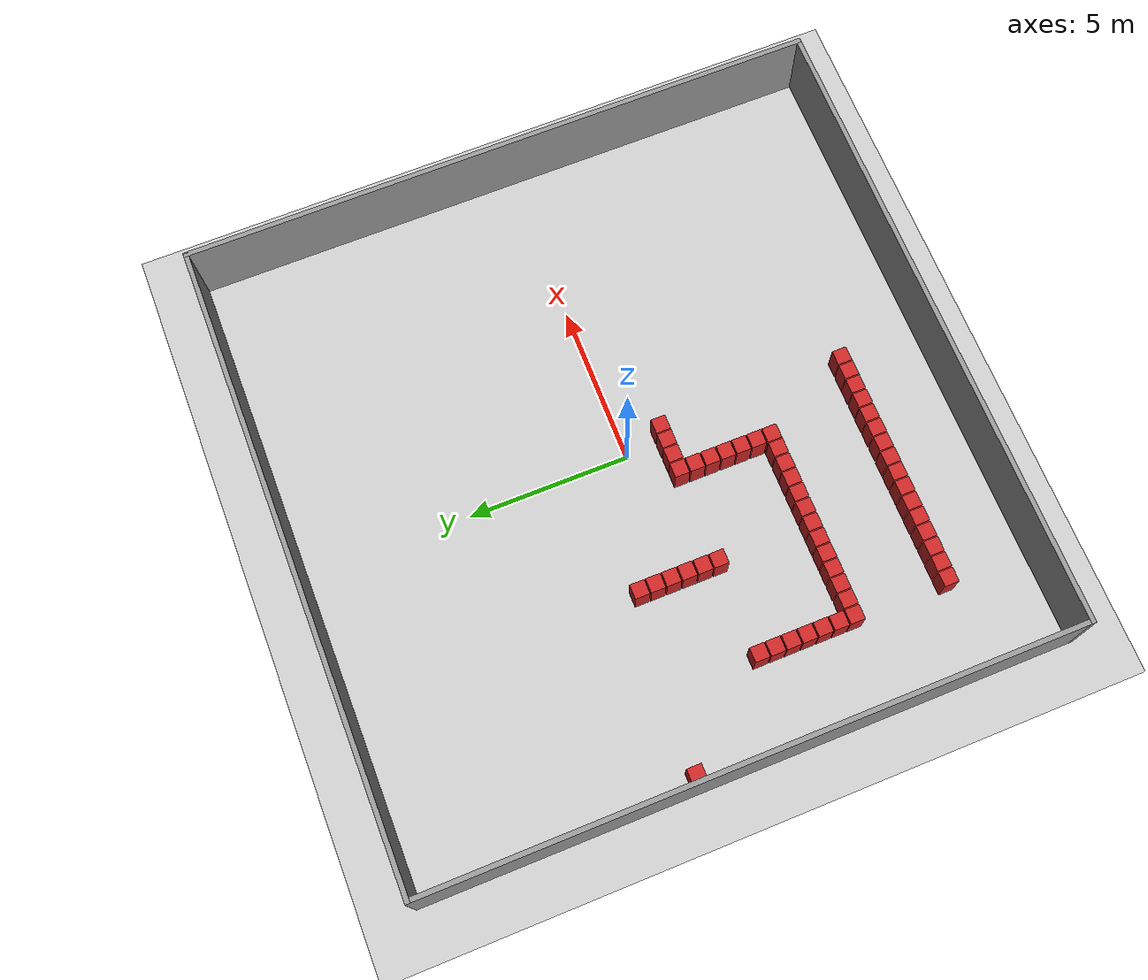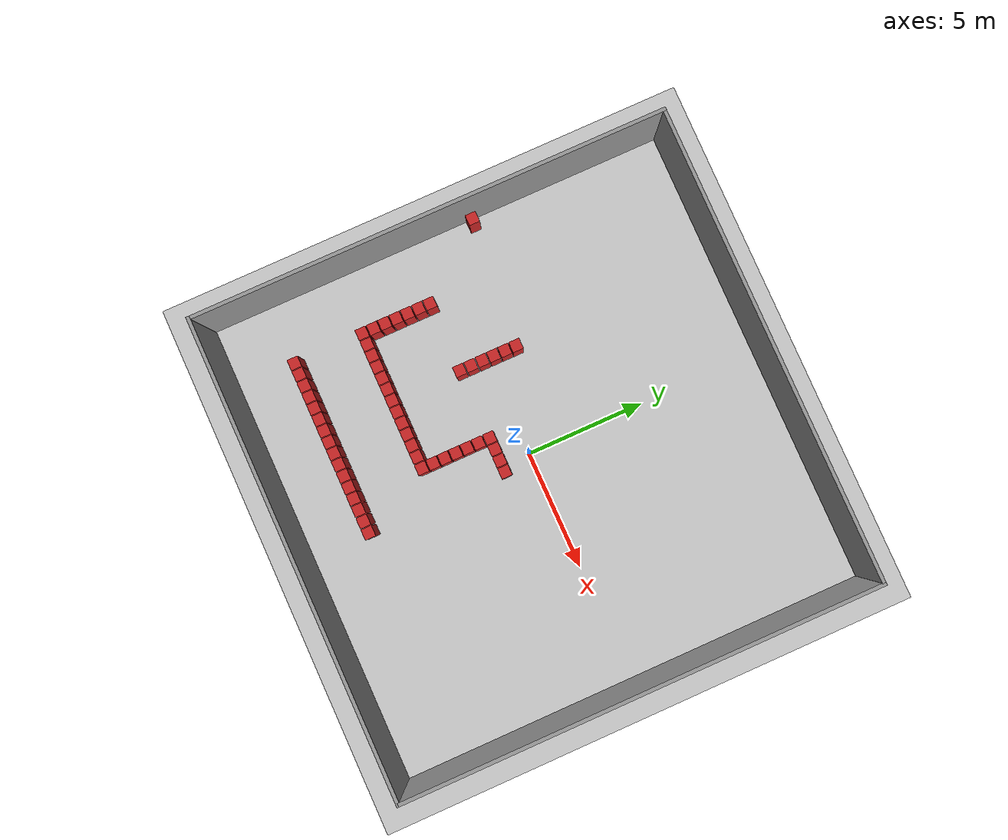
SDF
<sdf version="1.6">
 <world name="default">
  <model name="ground_plane">
   <static>1</static>
   <link name="link">
    <collision name="collision">
     <geometry><plane><normal>0 0 1</normal><size>100 100</size></plane></geometry>
     <surface><friction><ode><mu>100</mu><mu2>50</mu2></ode></friction></surface>
    </collision>
    <visual name="visual">
     <cast_shadows>0</cast_shadows>
     <geometry><plane><normal>0 0 1</normal><size>100 100</size></plane></geometry>
     <material>
      <script><uri>file://media/materials/scripts/gazebo.material</uri><name>Gazebo/Grey</name></script>
     </material>
    </visual>
   </link>
  </model>
  <model name="NamedLocations"><static>1</static><link name="DefaultStart"/></model>
  <model name="20x20_walls">
   <pose>0.044518 0.1761 0 0 -0 0</pose>
   <link name="Wall_1">
    <collision name="Wall_1_Collision">
     <geometry><box><size>20 0.15 2.5</size></box></geometry>
     <pose>0 0 1.25 0 -0 0</pose>
    </collision>
    <visual name="Wall_1_Visual">
     <pose>0 0 1.25 0 -0 0</pose>
     <geometry><box><size>20 0.15 2.5</size></box></geometry>
     <material>
      <script><uri>file://media/materials/scripts/gazebo.material</uri><name>Gazebo/Grey</name></script>
      <ambient>0.976471 0.992157 1 1</ambient>
     </material>
     <meta><layer>0</layer></meta>
    </visual>
    <pose>0 9.925 0 0 -0 0</pose>
   </link>
   <link name="Wall_3">
    <collision name="Wall_3_Collision">
     <geometry><box><size>20 0.15 2.5</size></box></geometry>
     <pose>0 0 1.25 0 -0 0</pose>
    </collision>
    <visual name="Wall_3_Visual">
     <pose>0 0 1.25 0 -0 0</pose>
     <geometry><box><size>20 0.15 2.5</size></box></geometry>
     <material>
      <script><uri>file://media/materials/scripts/gazebo.material</uri><name>Gazebo/Grey</name></script>
      <ambient>0.976471 0.992157 1 1</ambient>
     </material>
     <meta><layer>0</layer></meta>
    </visual>
    <pose>9.925 0 0 0 0 -1.5708</pose>
   </link>
   <link name="Wall_4">
    <collision name="Wall_4_Collision">
     <geometry><box><size>20 0.15 2.5</size></box></geometry>
     <pose>0 0 1.25 0 -0 0</pose>
    </collision>
    <visual name="Wall_4_Visual">
     <pose>0 0 1.25 0 -0 0</pose>
     <geometry><box><size>20 0.15 2.5</size></box></geometry>
     <material>
      <script><uri>file://media/materials/scripts/gazebo.material</uri><name>Gazebo/Grey</name></script>
      <ambient>0.976471 0.992157 1 1</ambient>
     </material>
     <meta><layer>0</layer></meta>
    </visual>
    <pose>0 -9.925 0 0 -0 3.14159</pose>
   </link>
   <link name="Wall_5">
    <collision name="Wall_5_Collision">
     <geometry><box><size>20 0.15 2.5</size></box></geometry>
     <pose>0 0 1.25 0 -0 0</pose>
    </collision>
    <visual name="Wall_5_Visual">
     <pose>0 0 1.25 0 -0 0</pose>
     <geometry><box><size>20 0.15 2.5</size></box></geometry>
     <material>
      <script><uri>file://media/materials/scripts/gazebo.material</uri><name>Gazebo/Grey</name></script>
      <ambient>0.976471 0.992157 1 1</ambient>
     </material>
     <meta><layer>0</layer></meta>
    </visual>
    <pose>-9.925 0 0 0 -0 1.5708</pose>
   </link>
   <static>1</static>
  </model>
  <model name="box_obstacle0">
   <static>0</static>
   <link name="link">
    <pose>0 0 0.1 0 -0 0</pose>
    <inertial>
     <mass>100</mass>
     <inertia>
      <ixx>0.166667</ixx>
      <ixy>0</ixy>
      <ixz>0</ixz>
      <iyy>0.166667</iyy>
      <iyz>0</iyz>
      <izz>0.166667</izz>
     </inertia>
    </inertial>
    <collision name="collision"><geometry><box><size>0.45 0.45 1</size></box></geometry></collision>
    <visual name="visual">
     <geometry><box><size>0.45 0.45 1</size></box></geometry>
     <material>
      <script><name>Gazebo/Red</name><uri>file://media/materials/scripts/gazebo.material</uri></script>
     </material>
    </visual>
   </link>
   <pose>-9.51051 1.75876 0.4 0 5e-06 0.002247</pose>
  </model>
  <model name="box_obstacle10">
   <static>0</static>
   <link name="link">
    <pose>0 0 0.1 0 -0 0</pose>
    <inertial>
     <mass>100</mass>
     <inertia>
      <ixx>0.166667</ixx>
      <ixy>0</ixy>
      <ixz>0</ixz>
      <iyy>0.166667</iyy>
      <iyz>0</iyz>
      <izz>0.166667</izz>
     </inertia>
    </inertial>
    <collision name="collision"><geometry><box><size>0.45 0.45 1</size></box></geometry></collision>
    <visual name="visual">
     <geometry><box><size>0.45 0.45 1</size></box></geometry>
     <material>
      <script><name>Gazebo/Red</name><uri>file://media/materials/scripts/gazebo.material</uri></script>
     </material>
    </visual>
   </link>
   <pose>-7.06051 -7.06124 0.4 0 5e-06 0.002247</pose>
  </model>
  <model name="box_obstacle11">
   <static>0</static>
   <link name="link">
    <pose>0 0 0.1 0 -0 0</pose>
    <inertial>
     <mass>100</mass>
     <inertia>
      <ixx>0.166667</ixx>
      <ixy>0</ixy>
      <ixz>0</ixz>
      <iyy>0.166667</iyy>
      <iyz>0</iyz>
      <izz>0.166667</izz>
     </inertia>
    </inertial>
    <collision name="collision"><geometry><box><size>0.45 0.45 1</size></box></geometry></collision>
    <visual name="visual">
     <geometry><box><size>0.45 0.45 1</size></box></geometry>
     <material>
      <script><name>Gazebo/Red</name><uri>file://media/materials/scripts/gazebo.material</uri></script>
     </material>
    </visual>
   </link>
   <pose>-7.06051 -4.12124 0.4 0 5e-06 0.002247</pose>
  </model>
  <model name="box_obstacle12">
   <static>0</static>
   <link name="link">
    <pose>0 0 0.1 0 -0 0</pose>
    <inertial>
     <mass>100</mass>
     <inertia>
      <ixx>0.166667</ixx>
      <ixy>0</ixy>
      <ixz>0</ixz>
      <iyy>0.166667</iyy>
      <iyz>0</iyz>
      <izz>0.166667</izz>
     </inertia>
    </inertial>
    <collision name="collision"><geometry><box><size>0.45 0.45 1</size></box></geometry></collision>
    <visual name="visual">
     <geometry><box><size>0.45 0.45 1</size></box></geometry>
     <material>
      <script><name>Gazebo/Red</name><uri>file://media/materials/scripts/gazebo.material</uri></script>
     </material>
    </visual>
   </link>
   <pose>-7.06051 -3.63124 0.4 0 5e-06 0.002247</pose>
  </model>
  <model name="box_obstacle13">
   <static>0</static>
   <link name="link">
    <pose>0 0 0.1 0 -0 0</pose>
    <inertial>
     <mass>100</mass>
     <inertia>
      <ixx>0.166667</ixx>
      <ixy>0</ixy>
      <ixz>0</ixz>
      <iyy>0.166667</iyy>
      <iyz>0</iyz>
      <izz>0.166667</izz>
     </inertia>
    </inertial>
    <collision name="collision"><geometry><box><size>0.45 0.45 1</size></box></geometry></collision>
    <visual name="visual">
     <geometry><box><size>0.45 0.45 1</size></box></geometry>
     <material>
      <script><name>Gazebo/Red</name><uri>file://media/materials/scripts/gazebo.material</uri></script>
     </material>
    </visual>
   </link>
   <pose>-7.06051 -3.14124 0.4 0 5e-06 0.002247</pose>
  </model>
  <model name="box_obstacle14">
   <static>0</static>
   <link name="link">
    <pose>0 0 0.1 0 -0 0</pose>
    <inertial>
     <mass>100</mass>
     <inertia>
      <ixx>0.166667</ixx>
      <ixy>0</ixy>
      <ixz>0</ixz>
      <iyy>0.166667</iyy>
      <iyz>0</iyz>
      <izz>0.166667</izz>
     </inertia>
    </inertial>
    <collision name="collision"><geometry><box><size>0.45 0.45 1</size></box></geometry></collision>
    <visual name="visual">
     <geometry><box><size>0.45 0.45 1</size></box></geometry>
     <material>
      <script><name>Gazebo/Red</name><uri>file://media/materials/scripts/gazebo.material</uri></script>
     </material>
    </visual>
   </link>
   <pose>-7.06051 -2.65124 0.4 0 5e-06 0.002247</pose>
  </model>
  <model name="box_obstacle15">
   <static>0</static>
   <link name="link">
    <pose>0 0 0.1 0 -0 0</pose>
    <inertial>
     <mass>100</mass>
     <inertia>
      <ixx>0.166667</ixx>
      <ixy>0</ixy>
      <ixz>0</ixz>
      <iyy>0.166667</iyy>
      <iyz>0</iyz>
      <izz>0.166667</izz>
     </inertia>
    </inertial>
    <collision name="collision"><geometry><box><size>0.45 0.45 1</size></box></geometry></collision>
    <visual name="visual">
     <geometry><box><size>0.45 0.45 1</size></box></geometry>
     <material>
      <script><name>Gazebo/Red</name><uri>file://media/materials/scripts/gazebo.material</uri></script>
     </material>
    </visual>
   </link>
   <pose>-7.06051 -2.16124 0.4 0 5e-06 0.002247</pose>
  </model>
  <model name="box_obstacle16">
   <static>0</static>
   <link name="link">
    <pose>0 0 0.1 0 -0 0</pose>
    <inertial>
     <mass>100</mass>
     <inertia>
      <ixx>0.166667</ixx>
      <ixy>0</ixy>
      <ixz>0</ixz>
      <iyy>0.166667</iyy>
      <iyz>0</iyz>
      <izz>0.166667</izz>
     </inertia>
    </inertial>
    <collision name="collision"><geometry><box><size>0.45 0.45 1</size></box></geometry></collision>
    <visual name="visual">
     <geometry><box><size>0.45 0.45 1</size></box></geometry>
     <material>
      <script><name>Gazebo/Red</name><uri>file://media/materials/scripts/gazebo.material</uri></script>
     </material>
    </visual>
   </link>
   <pose>-7.06051 -1.67124 0.4 0 5e-06 0.002247</pose>
  </model>
  <model name="box_obstacle17">
   <static>0</static>
   <link name="link">
    <pose>0 0 0.1 0 -0 0</pose>
    <inertial>
     <mass>100</mass>
     <inertia>
      <ixx>0.166667</ixx>
      <ixy>0</ixy>
      <ixz>0</ixz>
      <iyy>0.166667</iyy>
      <iyz>0</iyz>
      <izz>0.166667</izz>
     </inertia>
    </inertial>
    <collision name="collision"><geometry><box><size>0.45 0.45 1</size></box></geometry></collision>
    <visual name="visual">
     <geometry><box><size>0.45 0.45 1</size></box></geometry>
     <material>
      <script><name>Gazebo/Red</name><uri>file://media/materials/scripts/gazebo.material</uri></script>
     </material>
    </visual>
   </link>
   <pose>-7.06051 -1.18124 0.4 0 5e-06 0.002247</pose>
  </model>
  <model name="box_obstacle21">
   <static>0</static>
   <link name="link">
    <pose>0 0 0.1 0 -0 0</pose>
    <inertial>
     <mass>100</mass>
     <inertia>
      <ixx>0.166667</ixx>
      <ixy>0</ixy>
      <ixz>0</ixz>
      <iyy>0.166667</iyy>
      <iyz>0</iyz>
      <izz>0.166667</izz>
     </inertia>
    </inertial>
    <collision name="collision"><geometry><box><size>0.45 0.45 1</size></box></geometry></collision>
    <visual name="visual">
     <geometry><box><size>0.45 0.45 1</size></box></geometry>
     <material>
      <script><name>Gazebo/Red</name><uri>file://media/materials/scripts/gazebo.material</uri></script>
     </material>
    </visual>
   </link>
   <pose>-6.57051 -7.06124 0.4 0 5e-06 0.002247</pose>
  </model>
  <model name="box_obstacle22">
   <static>0</static>
   <link name="link">
    <pose>0 0 0.1 0 -0 0</pose>
    <inertial>
     <mass>100</mass>
     <inertia>
      <ixx>0.166667</ixx>
      <ixy>0</ixy>
      <ixz>0</ixz>
      <iyy>0.166667</iyy>
      <iyz>0</iyz>
      <izz>0.166667</izz>
     </inertia>
    </inertial>
    <collision name="collision"><geometry><box><size>0.45 0.45 1</size></box></geometry></collision>
    <visual name="visual">
     <geometry><box><size>0.45 0.45 1</size></box></geometry>
     <material>
      <script><name>Gazebo/Red</name><uri>file://media/materials/scripts/gazebo.material</uri></script>
     </material>
    </visual>
   </link>
   <pose>-6.57051 -4.12124 0.4 0 5e-06 0.002247</pose>
  </model>
  <model name="box_obstacle25">
   <static>0</static>
   <link name="link">
    <pose>0 0 0.1 0 -0 0</pose>
    <inertial>
     <mass>100</mass>
     <inertia>
      <ixx>0.166667</ixx>
      <ixy>0</ixy>
      <ixz>0</ixz>
      <iyy>0.166667</iyy>
      <iyz>0</iyz>
      <izz>0.166667</izz>
     </inertia>
    </inertial>
    <collision name="collision"><geometry><box><size>0.45 0.45 1</size></box></geometry></collision>
    <visual name="visual">
     <geometry><box><size>0.45 0.45 1</size></box></geometry>
     <material>
      <script><name>Gazebo/Red</name><uri>file://media/materials/scripts/gazebo.material</uri></script>
     </material>
    </visual>
   </link>
   <pose>-6.08051 -7.06124 0.4 0 5e-06 0.002247</pose>
  </model>
  <model name="box_obstacle26">
   <static>0</static>
   <link name="link">
    <pose>0 0 0.1 0 -0 0</pose>
    <inertial>
     <mass>100</mass>
     <inertia>
      <ixx>0.166667</ixx>
      <ixy>0</ixy>
      <ixz>0</ixz>
      <iyy>0.166667</iyy>
      <iyz>0</iyz>
      <izz>0.166667</izz>
     </inertia>
    </inertial>
    <collision name="collision"><geometry><box><size>0.45 0.45 1</size></box></geometry></collision>
    <visual name="visual">
     <geometry><box><size>0.45 0.45 1</size></box></geometry>
     <material>
      <script><name>Gazebo/Red</name><uri>file://media/materials/scripts/gazebo.material</uri></script>
     </material>
    </visual>
   </link>
   <pose>-6.08051 -4.12124 0.4 0 5e-06 0.002247</pose>
  </model>
  <model name="box_obstacle29">
   <static>0</static>
   <link name="link">
    <pose>0 0 0.1 0 -0 0</pose>
    <inertial>
     <mass>100</mass>
     <inertia>
      <ixx>0.166667</ixx>
      <ixy>0</ixy>
      <ixz>0</ixz>
      <iyy>0.166667</iyy>
      <iyz>0</iyz>
      <izz>0.166667</izz>
     </inertia>
    </inertial>
    <collision name="collision"><geometry><box><size>0.45 0.45 1</size></box></geometry></collision>
    <visual name="visual">
     <geometry><box><size>0.45 0.45 1</size></box></geometry>
     <material>
      <script><name>Gazebo/Red</name><uri>file://media/materials/scripts/gazebo.material</uri></script>
     </material>
    </visual>
   </link>
   <pose>-5.59051 -7.06124 0.4 0 5e-06 0.002247</pose>
  </model>
  <model name="box_obstacle30">
   <static>0</static>
   <link name="link">
    <pose>0 0 0.1 0 -0 0</pose>
    <inertial>
     <mass>100</mass>
     <inertia>
      <ixx>0.166667</ixx>
      <ixy>0</ixy>
      <ixz>0</ixz>
      <iyy>0.166667</iyy>
      <iyz>0</iyz>
      <izz>0.166667</izz>
     </inertia>
    </inertial>
    <collision name="collision"><geometry><box><size>0.45 0.45 1</size></box></geometry></collision>
    <visual name="visual">
     <geometry><box><size>0.45 0.45 1</size></box></geometry>
     <material>
      <script><name>Gazebo/Red</name><uri>file://media/materials/scripts/gazebo.material</uri></script>
     </material>
    </visual>
   </link>
   <pose>-5.59051 -4.12124 0.4 0 5e-06 0.002247</pose>
  </model>
  <model name="box_obstacle33">
   <static>0</static>
   <link name="link">
    <pose>0 0 0.1 0 -0 0</pose>
    <inertial>
     <mass>100</mass>
     <inertia>
      <ixx>0.166667</ixx>
      <ixy>0</ixy>
      <ixz>0</ixz>
      <iyy>0.166667</iyy>
      <iyz>0</iyz>
      <izz>0.166667</izz>
     </inertia>
    </inertial>
    <collision name="collision"><geometry><box><size>0.45 0.45 1</size></box></geometry></collision>
    <visual name="visual">
     <geometry><box><size>0.45 0.45 1</size></box></geometry>
     <material>
      <script><name>Gazebo/Red</name><uri>file://media/materials/scripts/gazebo.material</uri></script>
     </material>
    </visual>
   </link>
   <pose>-5.10051 -7.06124 0.4 0 5e-06 0.002247</pose>
  </model>
  <model name="box_obstacle34">
   <static>0</static>
   <link name="link">
    <pose>0 0 0.1 0 -0 0</pose>
    <inertial>
     <mass>100</mass>
     <inertia>
      <ixx>0.166667</ixx>
      <ixy>0</ixy>
      <ixz>0</ixz>
      <iyy>0.166667</iyy>
      <iyz>0</iyz>
      <izz>0.166667</izz>
     </inertia>
    </inertial>
    <collision name="collision"><geometry><box><size>0.45 0.45 1</size></box></geometry></collision>
    <visual name="visual">
     <geometry><box><size>0.45 0.45 1</size></box></geometry>
     <material>
      <script><name>Gazebo/Red</name><uri>file://media/materials/scripts/gazebo.material</uri></script>
     </material>
    </visual>
   </link>
   <pose>-5.10051 -4.12124 0.4 0 5e-06 0.002247</pose>
  </model>
  <model name="box_obstacle37">
   <static>0</static>
   <link name="link">
    <pose>0 0 0.1 0 -0 0</pose>
    <inertial>
     <mass>100</mass>
     <inertia>
      <ixx>0.166667</ixx>
      <ixy>0</ixy>
      <ixz>0</ixz>
      <iyy>0.166667</iyy>
      <iyz>0</iyz>
      <izz>0.166667</izz>
     </inertia>
    </inertial>
    <collision name="collision"><geometry><box><size>0.45 0.45 1</size></box></geometry></collision>
    <visual name="visual">
     <geometry><box><size>0.45 0.45 1</size></box></geometry>
     <material>
      <script><name>Gazebo/Red</name><uri>file://media/materials/scripts/gazebo.material</uri></script>
     </material>
    </visual>
   </link>
   <pose>-4.61051 -7.06124 0.4 0 5e-06 0.002247</pose>
  </model>
  <model name="box_obstacle38">
   <static>0</static>
   <link name="link">
    <pose>0 0 0.1 0 -0 0</pose>
    <inertial>
     <mass>100</mass>
     <inertia>
      <ixx>0.166667</ixx>
      <ixy>0</ixy>
      <ixz>0</ixz>
      <iyy>0.166667</iyy>
      <iyz>0</iyz>
      <izz>0.166667</izz>
     </inertia>
    </inertial>
    <collision name="collision"><geometry><box><size>0.45 0.45 1</size></box></geometry></collision>
    <visual name="visual">
     <geometry><box><size>0.45 0.45 1</size></box></geometry>
     <material>
      <script><name>Gazebo/Red</name><uri>file://media/materials/scripts/gazebo.material</uri></script>
     </material>
    </visual>
   </link>
   <pose>-4.61051 -4.12124 0.4 0 5e-06 0.002247</pose>
  </model>
  <model name="box_obstacle41">
   <static>0</static>
   <link name="link">
    <pose>0 0 0.1 0 -0 0</pose>
    <inertial>
     <mass>100</mass>
     <inertia>
      <ixx>0.166667</ixx>
      <ixy>0</ixy>
      <ixz>0</ixz>
      <iyy>0.166667</iyy>
      <iyz>0</iyz>
      <izz>0.166667</izz>
     </inertia>
    </inertial>
    <collision name="collision"><geometry><box><size>0.45 0.45 1</size></box></geometry></collision>
    <visual name="visual">
     <geometry><box><size>0.45 0.45 1</size></box></geometry>
     <material>
      <script><name>Gazebo/Red</name><uri>file://media/materials/scripts/gazebo.material</uri></script>
     </material>
    </visual>
   </link>
   <pose>-4.12051 -7.06124 0.4 0 5e-06 0.002247</pose>
  </model>
  <model name="box_obstacle42">
   <static>0</static>
   <link name="link">
    <pose>0 0 0.1 0 -0 0</pose>
    <inertial>
     <mass>100</mass>
     <inertia>
      <ixx>0.166667</ixx>
      <ixy>0</ixy>
      <ixz>0</ixz>
      <iyy>0.166667</iyy>
      <iyz>0</iyz>
      <izz>0.166667</izz>
     </inertia>
    </inertial>
    <collision name="collision"><geometry><box><size>0.45 0.45 1</size></box></geometry></collision>
    <visual name="visual">
     <geometry><box><size>0.45 0.45 1</size></box></geometry>
     <material>
      <script><name>Gazebo/Red</name><uri>file://media/materials/scripts/gazebo.material</uri></script>
     </material>
    </visual>
   </link>
   <pose>-4.12051 -4.12124 0.4 0 5e-06 0.002247</pose>
  </model>
  <model name="box_obstacle43">
   <static>0</static>
   <link name="link">
    <pose>0 0 0.1 0 -0 0</pose>
    <inertial>
     <mass>100</mass>
     <inertia>
      <ixx>0.166667</ixx>
      <ixy>0</ixy>
      <ixz>0</ixz>
      <iyy>0.166667</iyy>
      <iyz>0</iyz>
      <izz>0.166667</izz>
     </inertia>
    </inertial>
    <collision name="collision"><geometry><box><size>0.45 0.45 1</size></box></geometry></collision>
    <visual name="visual">
     <geometry><box><size>0.45 0.45 1</size></box></geometry>
     <material>
      <script><name>Gazebo/Red</name><uri>file://media/materials/scripts/gazebo.material</uri></script>
     </material>
    </visual>
   </link>
   <pose>-4.12051 -1.18124 0.4 0 5e-06 0.002247</pose>
  </model>
  <model name="box_obstacle44">
   <static>0</static>
   <link name="link">
    <pose>0 0 0.1 0 -0 0</pose>
    <inertial>
     <mass>100</mass>
     <inertia>
      <ixx>0.166667</ixx>
      <ixy>0</ixy>
      <ixz>0</ixz>
      <iyy>0.166667</iyy>
      <iyz>0</iyz>
      <izz>0.166667</izz>
     </inertia>
    </inertial>
    <collision name="collision"><geometry><box><size>0.45 0.45 1</size></box></geometry></collision>
    <visual name="visual">
     <geometry><box><size>0.45 0.45 1</size></box></geometry>
     <material>
      <script><name>Gazebo/Red</name><uri>file://media/materials/scripts/gazebo.material</uri></script>
     </material>
    </visual>
   </link>
   <pose>-4.12051 -0.691242 0.4 0 5e-06 0.002247</pose>
  </model>
  <model name="box_obstacle45">
   <static>0</static>
   <link name="link">
    <pose>0 0 0.1 0 -0 0</pose>
    <inertial>
     <mass>100</mass>
     <inertia>
      <ixx>0.166667</ixx>
      <ixy>0</ixy>
      <ixz>0</ixz>
      <iyy>0.166667</iyy>
      <iyz>0</iyz>
      <izz>0.166667</izz>
     </inertia>
    </inertial>
    <collision name="collision"><geometry><box><size>0.45 0.45 1</size></box></geometry></collision>
    <visual name="visual">
     <geometry><box><size>0.45 0.45 1</size></box></geometry>
     <material>
      <script><name>Gazebo/Red</name><uri>file://media/materials/scripts/gazebo.material</uri></script>
     </material>
    </visual>
   </link>
   <pose>-4.12051 -0.201242 0.4 0 5e-06 0.002247</pose>
  </model>
  <model name="box_obstacle46">
   <static>0</static>
   <link name="link">
    <pose>0 0 0.1 0 -0 0</pose>
    <inertial>
     <mass>100</mass>
     <inertia>
      <ixx>0.166667</ixx>
      <ixy>0</ixy>
      <ixz>0</ixz>
      <iyy>0.166667</iyy>
      <iyz>0</iyz>
      <izz>0.166667</izz>
     </inertia>
    </inertial>
    <collision name="collision"><geometry><box><size>0.45 0.45 1</size></box></geometry></collision>
    <visual name="visual">
     <geometry><box><size>0.45 0.45 1</size></box></geometry>
     <material>
      <script><name>Gazebo/Red</name><uri>file://media/materials/scripts/gazebo.material</uri></script>
     </material>
    </visual>
   </link>
   <pose>-4.12051 0.288758 0.4 0 5e-06 0.002247</pose>
  </model>
  <model name="box_obstacle47">
   <static>0</static>
   <link name="link">
    <pose>0 0 0.1 0 -0 0</pose>
    <inertial>
     <mass>100</mass>
     <inertia>
      <ixx>0.166667</ixx>
      <ixy>0</ixy>
      <ixz>0</ixz>
      <iyy>0.166667</iyy>
      <iyz>0</iyz>
      <izz>0.166667</izz>
     </inertia>
    </inertial>
    <collision name="collision"><geometry><box><size>0.45 0.45 1</size></box></geometry></collision>
    <visual name="visual">
     <geometry><box><size>0.45 0.45 1</size></box></geometry>
     <material>
      <script><name>Gazebo/Red</name><uri>file://media/materials/scripts/gazebo.material</uri></script>
     </material>
    </visual>
   </link>
   <pose>-4.12051 0.778758 0.4 0 5e-06 0.002247</pose>
  </model>
  <model name="box_obstacle48">
   <static>0</static>
   <link name="link">
    <pose>0 0 0.1 0 -0 0</pose>
    <inertial>
     <mass>100</mass>
     <inertia>
      <ixx>0.166667</ixx>
      <ixy>0</ixy>
      <ixz>0</ixz>
      <iyy>0.166667</iyy>
      <iyz>0</iyz>
      <izz>0.166667</izz>
     </inertia>
    </inertial>
    <collision name="collision"><geometry><box><size>0.45 0.45 1</size></box></geometry></collision>
    <visual name="visual">
     <geometry><box><size>0.45 0.45 1</size></box></geometry>
     <material>
      <script><name>Gazebo/Red</name><uri>file://media/materials/scripts/gazebo.material</uri></script>
     </material>
    </visual>
   </link>
   <pose>-4.12051 1.26876 0.4 0 5e-06 0.002247</pose>
  </model>
  <model name="box_obstacle62">
   <static>0</static>
   <link name="link">
    <pose>0 0 0.1 0 -0 0</pose>
    <inertial>
     <mass>100</mass>
     <inertia>
      <ixx>0.166667</ixx>
      <ixy>0</ixy>
      <ixz>0</ixz>
      <iyy>0.166667</iyy>
      <iyz>0</iyz>
      <izz>0.166667</izz>
     </inertia>
    </inertial>
    <collision name="collision"><geometry><box><size>0.45 0.45 1</size></box></geometry></collision>
    <visual name="visual">
     <geometry><box><size>0.45 0.45 1</size></box></geometry>
     <material>
      <script><name>Gazebo/Red</name><uri>file://media/materials/scripts/gazebo.material</uri></script>
     </material>
    </visual>
   </link>
   <pose>-3.63051 -7.06124 0.4 0 5e-06 0.002247</pose>
  </model>
  <model name="box_obstacle63">
   <static>0</static>
   <link name="link">
    <pose>0 0 0.1 0 -0 0</pose>
    <inertial>
     <mass>100</mass>
     <inertia>
      <ixx>0.166667</ixx>
      <ixy>0</ixy>
      <ixz>0</ixz>
      <iyy>0.166667</iyy>
      <iyz>0</iyz>
      <izz>0.166667</izz>
     </inertia>
    </inertial>
    <collision name="collision"><geometry><box><size>0.45 0.45 1</size></box></geometry></collision>
    <visual name="visual">
     <geometry><box><size>0.45 0.45 1</size></box></geometry>
     <material>
      <script><name>Gazebo/Red</name><uri>file://media/materials/scripts/gazebo.material</uri></script>
     </material>
    </visual>
   </link>
   <pose>-3.63051 -4.12124 0.4 0 5e-06 0.002247</pose>
  </model>
  <model name="box_obstacle66">
   <static>0</static>
   <link name="link">
    <pose>0 0 0.1 0 -0 0</pose>
    <inertial>
     <mass>100</mass>
     <inertia>
      <ixx>0.166667</ixx>
      <ixy>0</ixy>
      <ixz>0</ixz>
      <iyy>0.166667</iyy>
      <iyz>0</iyz>
      <izz>0.166667</izz>
     </inertia>
    </inertial>
    <collision name="collision"><geometry><box><size>0.45 0.45 1</size></box></geometry></collision>
    <visual name="visual">
     <geometry><box><size>0.45 0.45 1</size></box></geometry>
     <material>
      <script><name>Gazebo/Red</name><uri>file://media/materials/scripts/gazebo.material</uri></script>
     </material>
    </visual>
   </link>
   <pose>-3.14051 -7.06124 0.4 0 5e-06 0.002247</pose>
  </model>
  <model name="box_obstacle67">
   <static>0</static>
   <link name="link">
    <pose>0 0 0.1 0 -0 0</pose>
    <inertial>
     <mass>100</mass>
     <inertia>
      <ixx>0.166667</ixx>
      <ixy>0</ixy>
      <ixz>0</ixz>
      <iyy>0.166667</iyy>
      <iyz>0</iyz>
      <izz>0.166667</izz>
     </inertia>
    </inertial>
    <collision name="collision"><geometry><box><size>0.45 0.45 1</size></box></geometry></collision>
    <visual name="visual">
     <geometry><box><size>0.45 0.45 1</size></box></geometry>
     <material>
      <script><name>Gazebo/Red</name><uri>file://media/materials/scripts/gazebo.material</uri></script>
     </material>
    </visual>
   </link>
   <pose>-3.14051 -4.12124 0.4 0 5e-06 0.002247</pose>
  </model>
  <model name="box_obstacle70">
   <static>0</static>
   <link name="link">
    <pose>0 0 0.1 0 -0 0</pose>
    <inertial>
     <mass>100</mass>
     <inertia>
      <ixx>0.166667</ixx>
      <ixy>0</ixy>
      <ixz>0</ixz>
      <iyy>0.166667</iyy>
      <iyz>0</iyz>
      <izz>0.166667</izz>
     </inertia>
    </inertial>
    <collision name="collision"><geometry><box><size>0.45 0.45 1</size></box></geometry></collision>
    <visual name="visual">
     <geometry><box><size>0.45 0.45 1</size></box></geometry>
     <material>
      <script><name>Gazebo/Red</name><uri>file://media/materials/scripts/gazebo.material</uri></script>
     </material>
    </visual>
   </link>
   <pose>-2.65051 -7.06124 0.4 0 5e-06 0.002247</pose>
  </model>
  <model name="box_obstacle71">
   <static>0</static>
   <link name="link">
    <pose>0 0 0.1 0 -0 0</pose>
    <inertial>
     <mass>100</mass>
     <inertia>
      <ixx>0.166667</ixx>
      <ixy>0</ixy>
      <ixz>0</ixz>
      <iyy>0.166667</iyy>
      <iyz>0</iyz>
      <izz>0.166667</izz>
     </inertia>
    </inertial>
    <collision name="collision"><geometry><box><size>0.45 0.45 1</size></box></geometry></collision>
    <visual name="visual">
     <geometry><box><size>0.45 0.45 1</size></box></geometry>
     <material>
      <script><name>Gazebo/Red</name><uri>file://media/materials/scripts/gazebo.material</uri></script>
     </material>
    </visual>
   </link>
   <pose>-2.65051 -4.12124 0.4 0 5e-06 0.002247</pose>
  </model>
  <model name="box_obstacle74">
   <static>0</static>
   <link name="link">
    <pose>0 0 0.1 0 -0 0</pose>
    <inertial>
     <mass>100</mass>
     <inertia>
      <ixx>0.166667</ixx>
      <ixy>0</ixy>
      <ixz>0</ixz>
      <iyy>0.166667</iyy>
      <iyz>0</iyz>
      <izz>0.166667</izz>
     </inertia>
    </inertial>
    <collision name="collision"><geometry><box><size>0.45 0.45 1</size></box></geometry></collision>
    <visual name="visual">
     <geometry><box><size>0.45 0.45 1</size></box></geometry>
     <material>
      <script><name>Gazebo/Red</name><uri>file://media/materials/scripts/gazebo.material</uri></script>
     </material>
    </visual>
   </link>
   <pose>-2.16051 -7.06124 0.4 0 5e-06 0.002247</pose>
  </model>
  <model name="box_obstacle75">
   <static>0</static>
   <link name="link">
    <pose>0 0 0.1 0 -0 0</pose>
    <inertial>
     <mass>100</mass>
     <inertia>
      <ixx>0.166667</ixx>
      <ixy>0</ixy>
      <ixz>0</ixz>
      <iyy>0.166667</iyy>
      <iyz>0</iyz>
      <izz>0.166667</izz>
     </inertia>
    </inertial>
    <collision name="collision"><geometry><box><size>0.45 0.45 1</size></box></geometry></collision>
    <visual name="visual">
     <geometry><box><size>0.45 0.45 1</size></box></geometry>
     <material>
      <script><name>Gazebo/Red</name><uri>file://media/materials/scripts/gazebo.material</uri></script>
     </material>
    </visual>
   </link>
   <pose>-2.16051 -4.12124 0.4 0 5e-06 0.002247</pose>
  </model>
  <model name="box_obstacle78">
   <static>0</static>
   <link name="link">
    <pose>0 0 0.1 0 -0 0</pose>
    <inertial>
     <mass>100</mass>
     <inertia>
      <ixx>0.166667</ixx>
      <ixy>0</ixy>
      <ixz>0</ixz>
      <iyy>0.166667</iyy>
      <iyz>0</iyz>
      <izz>0.166667</izz>
     </inertia>
    </inertial>
    <collision name="collision"><geometry><box><size>0.45 0.45 1</size></box></geometry></collision>
    <visual name="visual">
     <geometry><box><size>0.45 0.45 1</size></box></geometry>
     <material>
      <script><name>Gazebo/Red</name><uri>file://media/materials/scripts/gazebo.material</uri></script>
     </material>
    </visual>
   </link>
   <pose>-1.67051 -7.06124 0.4 0 5e-06 0.002247</pose>
  </model>
  <model name="box_obstacle79">
   <static>0</static>
   <link name="link">
    <pose>0 0 0.1 0 -0 0</pose>
    <inertial>
     <mass>100</mass>
     <inertia>
      <ixx>0.166667</ixx>
      <ixy>0</ixy>
      <ixz>0</ixz>
      <iyy>0.166667</iyy>
      <iyz>0</iyz>
      <izz>0.166667</izz>
     </inertia>
    </inertial>
    <collision name="collision"><geometry><box><size>0.45 0.45 1</size></box></geometry></collision>
    <visual name="visual">
     <geometry><box><size>0.45 0.45 1</size></box></geometry>
     <material>
      <script><name>Gazebo/Red</name><uri>file://media/materials/scripts/gazebo.material</uri></script>
     </material>
    </visual>
   </link>
   <pose>-1.67051 -4.12124 0.4 0 5e-06 0.002247</pose>
  </model>
  <model name="box_obstacle82">
   <static>0</static>
   <link name="link">
    <pose>0 0 0.1 0 -0 0</pose>
    <inertial>
     <mass>100</mass>
     <inertia>
      <ixx>0.166667</ixx>
      <ixy>0</ixy>
      <ixz>0</ixz>
      <iyy>0.166667</iyy>
      <iyz>0</iyz>
      <izz>0.166667</izz>
     </inertia>
    </inertial>
    <collision name="collision"><geometry><box><size>0.45 0.45 1</size></box></geometry></collision>
    <visual name="visual">
     <geometry><box><size>0.45 0.45 1</size></box></geometry>
     <material>
      <script><name>Gazebo/Red</name><uri>file://media/materials/scripts/gazebo.material</uri></script>
     </material>
    </visual>
   </link>
   <pose>-1.18051 -7.06124 0.4 0 5e-06 0.002247</pose>
  </model>
  <model name="box_obstacle83">
   <static>0</static>
   <link name="link">
    <pose>0 0 0.1 0 -0 0</pose>
    <inertial>
     <mass>100</mass>
     <inertia>
      <ixx>0.166667</ixx>
      <ixy>0</ixy>
      <ixz>0</ixz>
      <iyy>0.166667</iyy>
      <iyz>0</iyz>
      <izz>0.166667</izz>
     </inertia>
    </inertial>
    <collision name="collision"><geometry><box><size>0.45 0.45 1</size></box></geometry></collision>
    <visual name="visual">
     <geometry><box><size>0.45 0.45 1</size></box></geometry>
     <material>
      <script><name>Gazebo/Red</name><uri>file://media/materials/scripts/gazebo.material</uri></script>
     </material>
    </visual>
   </link>
   <pose>-1.18051 -4.12124 0.4 0 5e-06 0.002247</pose>
  </model>
  <model name="box_obstacle84">
   <static>0</static>
   <link name="link">
    <pose>0 0 0.1 0 -0 0</pose>
    <inertial>
     <mass>100</mass>
     <inertia>
      <ixx>0.166667</ixx>
      <ixy>0</ixy>
      <ixz>0</ixz>
      <iyy>0.166667</iyy>
      <iyz>0</iyz>
      <izz>0.166667</izz>
     </inertia>
    </inertial>
    <collision name="collision"><geometry><box><size>0.45 0.45 1</size></box></geometry></collision>
    <visual name="visual">
     <geometry><box><size>0.45 0.45 1</size></box></geometry>
     <material>
      <script><name>Gazebo/Red</name><uri>file://media/materials/scripts/gazebo.material</uri></script>
     </material>
    </visual>
   </link>
   <pose>-1.18051 -3.63124 0.4 0 5e-06 0.002247</pose>
  </model>
  <model name="box_obstacle85">
   <static>0</static>
   <link name="link">
    <pose>0 0 0.1 0 -0 0</pose>
    <inertial>
     <mass>100</mass>
     <inertia>
      <ixx>0.166667</ixx>
      <ixy>0</ixy>
      <ixz>0</ixz>
      <iyy>0.166667</iyy>
      <iyz>0</iyz>
      <izz>0.166667</izz>
     </inertia>
    </inertial>
    <collision name="collision"><geometry><box><size>0.45 0.45 1</size></box></geometry></collision>
    <visual name="visual">
     <geometry><box><size>0.45 0.45 1</size></box></geometry>
     <material>
      <script><name>Gazebo/Red</name><uri>file://media/materials/scripts/gazebo.material</uri></script>
     </material>
    </visual>
   </link>
   <pose>-1.18051 -3.14124 0.4 0 5e-06 0.002247</pose>
  </model>
  <model name="box_obstacle86">
   <static>0</static>
   <link name="link">
    <pose>0 0 0.1 0 -0 0</pose>
    <inertial>
     <mass>100</mass>
     <inertia>
      <ixx>0.166667</ixx>
      <ixy>0</ixy>
      <ixz>0</ixz>
      <iyy>0.166667</iyy>
      <iyz>0</iyz>
      <izz>0.166667</izz>
     </inertia>
    </inertial>
    <collision name="collision"><geometry><box><size>0.45 0.45 1</size></box></geometry></collision>
    <visual name="visual">
     <geometry><box><size>0.45 0.45 1</size></box></geometry>
     <material>
      <script><name>Gazebo/Red</name><uri>file://media/materials/scripts/gazebo.material</uri></script>
     </material>
    </visual>
   </link>
   <pose>-1.18051 -2.65124 0.4 0 5e-06 0.002247</pose>
  </model>
  <model name="box_obstacle87">
   <static>0</static>
   <link name="link">
    <pose>0 0 0.1 0 -0 0</pose>
    <inertial>
     <mass>100</mass>
     <inertia>
      <ixx>0.166667</ixx>
      <ixy>0</ixy>
      <ixz>0</ixz>
      <iyy>0.166667</iyy>
      <iyz>0</iyz>
      <izz>0.166667</izz>
     </inertia>
    </inertial>
    <collision name="collision"><geometry><box><size>0.45 0.45 1</size></box></geometry></collision>
    <visual name="visual">
     <geometry><box><size>0.45 0.45 1</size></box></geometry>
     <material>
      <script><name>Gazebo/Red</name><uri>file://media/materials/scripts/gazebo.material</uri></script>
     </material>
    </visual>
   </link>
   <pose>-1.18051 -2.16124 0.4 0 5e-06 0.002247</pose>
  </model>
  <model name="box_obstacle88">
   <static>0</static>
   <link name="link">
    <pose>0 0 0.1 0 -0 0</pose>
    <inertial>
     <mass>100</mass>
     <inertia>
      <ixx>0.166667</ixx>
      <ixy>0</ixy>
      <ixz>0</ixz>
      <iyy>0.166667</iyy>
      <iyz>0</iyz>
      <izz>0.166667</izz>
     </inertia>
    </inertial>
    <collision name="collision"><geometry><box><size>0.45 0.45 1</size></box></geometry></collision>
    <visual name="visual">
     <geometry><box><size>0.45 0.45 1</size></box></geometry>
     <material>
      <script><name>Gazebo/Red</name><uri>file://media/materials/scripts/gazebo.material</uri></script>
     </material>
    </visual>
   </link>
   <pose>-1.18051 -1.67124 0.4 0 5e-06 0.002247</pose>
  </model>
  <model name="box_obstacle89">
   <static>0</static>
   <link name="link">
    <pose>0 0 0.1 0 -0 0</pose>
    <inertial>
     <mass>100</mass>
     <inertia>
      <ixx>0.166667</ixx>
      <ixy>0</ixy>
      <ixz>0</ixz>
      <iyy>0.166667</iyy>
      <iyz>0</iyz>
      <izz>0.166667</izz>
     </inertia>
    </inertial>
    <collision name="collision"><geometry><box><size>0.45 0.45 1</size></box></geometry></collision>
    <visual name="visual">
     <geometry><box><size>0.45 0.45 1</size></box></geometry>
     <material>
      <script><name>Gazebo/Red</name><uri>file://media/materials/scripts/gazebo.material</uri></script>
     </material>
    </visual>
   </link>
   <pose>-1.18051 -1.18124 0.4 0 5e-06 0.002247</pose>
  </model>
  <model name="box_obstacle93">
   <static>0</static>
   <link name="link">
    <pose>0 0 0.1 0 -0 0</pose>
    <inertial>
     <mass>100</mass>
     <inertia>
      <ixx>0.166667</ixx>
      <ixy>0</ixy>
      <ixz>0</ixz>
      <iyy>0.166667</iyy>
      <iyz>0</iyz>
      <izz>0.166667</izz>
     </inertia>
    </inertial>
    <collision name="collision"><geometry><box><size>0.45 0.45 1</size></box></geometry></collision>
    <visual name="visual">
     <geometry><box><size>0.45 0.45 1</size></box></geometry>
     <material>
      <script><name>Gazebo/Red</name><uri>file://media/materials/scripts/gazebo.material</uri></script>
     </material>
    </visual>
   </link>
   <pose>-0.690508 -7.06124 0.4 0 5e-06 0.002247</pose>
  </model>
  <model name="box_obstacle94">
   <static>0</static>
   <link name="link">
    <pose>0 0 0.1 0 -0 0</pose>
    <inertial>
     <mass>100</mass>
     <inertia>
      <ixx>0.166667</ixx>
      <ixy>0</ixy>
      <ixz>0</ixz>
      <iyy>0.166667</iyy>
      <iyz>0</iyz>
      <izz>0.166667</izz>
     </inertia>
    </inertial>
    <collision name="collision"><geometry><box><size>0.45 0.45 1</size></box></geometry></collision>
    <visual name="visual">
     <geometry><box><size>0.45 0.45 1</size></box></geometry>
     <material>
      <script><name>Gazebo/Red</name><uri>file://media/materials/scripts/gazebo.material</uri></script>
     </material>
    </visual>
   </link>
   <pose>-0.690508 -1.18124 0.4 0 5e-06 0.002247</pose>
  </model>
  <model name="box_obstacle98">
   <static>0</static>
   <link name="link">
    <pose>0 0 0.1 0 -0 0</pose>
    <inertial>
     <mass>100</mass>
     <inertia>
      <ixx>0.166667</ixx>
      <ixy>0</ixy>
      <ixz>0</ixz>
      <iyy>0.166667</iyy>
      <iyz>0</iyz>
      <izz>0.166667</izz>
     </inertia>
    </inertial>
    <collision name="collision"><geometry><box><size>0.45 0.45 1</size></box></geometry></collision>
    <visual name="visual">
     <geometry><box><size>0.45 0.45 1</size></box></geometry>
     <material>
      <script><name>Gazebo/Red</name><uri>file://media/materials/scripts/gazebo.material</uri></script>
     </material>
    </visual>
   </link>
   <pose>-0.200508 -7.06124 0.4 0 5e-06 0.002247</pose>
  </model>
  <model name="box_obstacle99">
   <static>0</static>
   <link name="link">
    <pose>0 0 0.1 0 -0 0</pose>
    <inertial>
     <mass>100</mass>
     <inertia>
      <ixx>0.166667</ixx>
      <ixy>0</ixy>
      <ixz>0</ixz>
      <iyy>0.166667</iyy>
      <iyz>0</iyz>
      <izz>0.166667</izz>
     </inertia>
    </inertial>
    <collision name="collision"><geometry><box><size>0.45 0.45 1</size></box></geometry></collision>
    <visual name="visual">
     <geometry><box><size>0.45 0.45 1</size></box></geometry>
     <material>
      <script><name>Gazebo/Red</name><uri>file://media/materials/scripts/gazebo.material</uri></script>
     </material>
    </visual>
   </link>
   <pose>-0.200508 -1.18124 0.4 0 5e-06 0.002247</pose>
  </model>
  <model name="box_obstacle103">
   <static>0</static>
   <link name="link">
    <pose>0 0 0.1 0 -0 0</pose>
    <inertial>
     <mass>100</mass>
     <inertia>
      <ixx>0.166667</ixx>
      <ixy>0</ixy>
      <ixz>0</ixz>
      <iyy>0.166667</iyy>
      <iyz>0</iyz>
      <izz>0.166667</izz>
     </inertia>
    </inertial>
    <collision name="collision"><geometry><box><size>0.45 0.45 1</size></box></geometry></collision>
    <visual name="visual">
     <geometry><box><size>0.45 0.45 1</size></box></geometry>
     <material>
      <script><name>Gazebo/Red</name><uri>file://media/materials/scripts/gazebo.material</uri></script>
     </material>
    </visual>
   </link>
   <pose>0.289492 -7.06124 0.4 0 5e-06 0.002247</pose>
  </model>
  <model name="box_obstacle104">
   <static>0</static>
   <link name="link">
    <pose>0 0 0.1 0 -0 0</pose>
    <inertial>
     <mass>100</mass>
     <inertia>
      <ixx>0.166667</ixx>
      <ixy>0</ixy>
      <ixz>0</ixz>
      <iyy>0.166667</iyy>
      <iyz>0</iyz>
      <izz>0.166667</izz>
     </inertia>
    </inertial>
    <collision name="collision"><geometry><box><size>0.45 0.45 1</size></box></geometry></collision>
    <visual name="visual">
     <geometry><box><size>0.45 0.45 1</size></box></geometry>
     <material>
      <script><name>Gazebo/Red</name><uri>file://media/materials/scripts/gazebo.material</uri></script>
     </material>
    </visual>
   </link>
   <pose>0.289492 -1.18124 0.4 0 5e-06 0.002247</pose>
  </model>
 </world>
</sdf>
